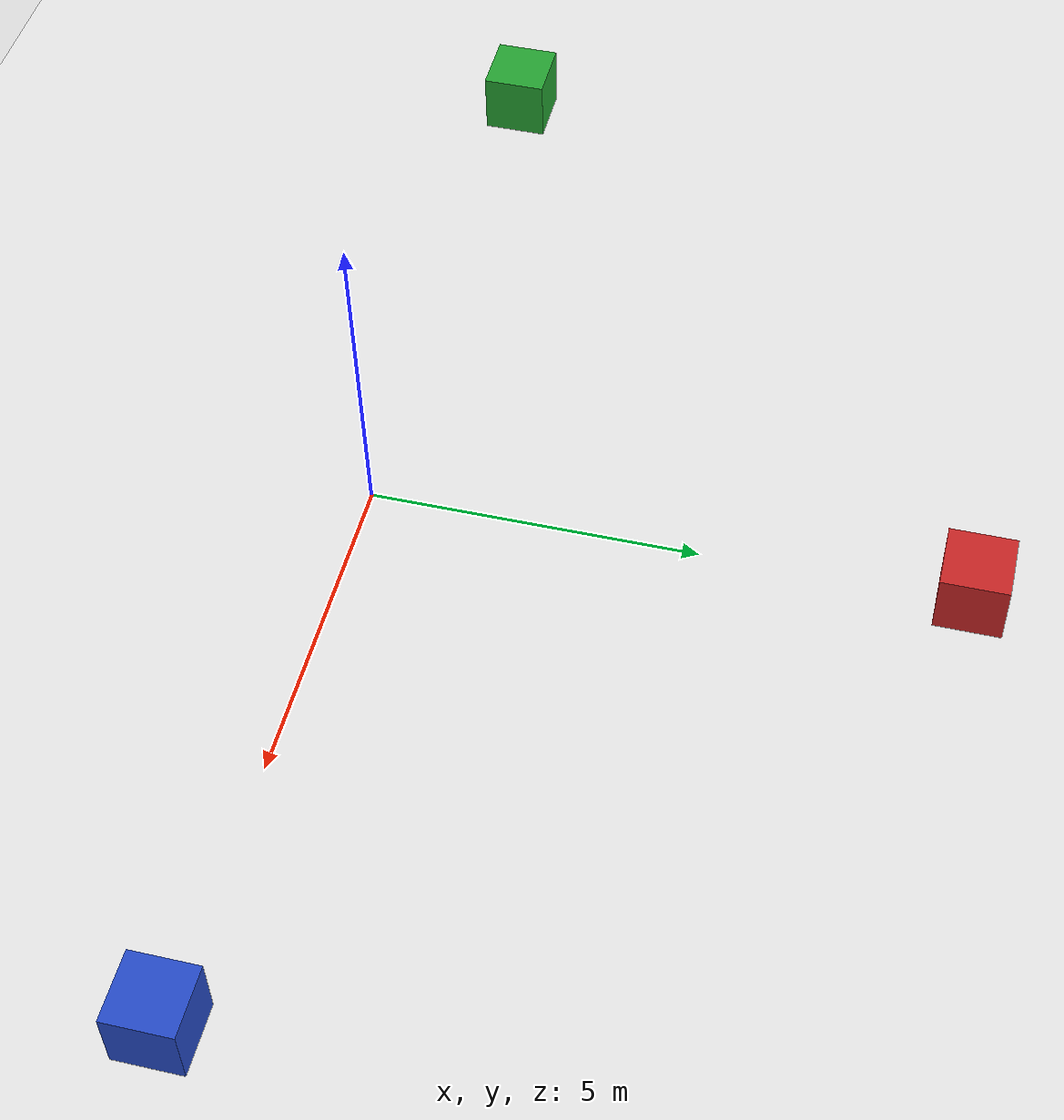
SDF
<sdf version='1.4'>
  <world name='default'>
    <scene>
      <ambient>0.4 0.4 0.4 1</ambient>
      <background>0.7 0.7 0.7 1</background>
      <shadows>1</shadows>
    </scene>
    <light name='sun' type='directional'>
      <cast_shadows>1</cast_shadows>
      <pose>0 0 10 0 -0 0</pose>
      <diffuse>0.8 0.8 0.8 1</diffuse>
      <specular>0.2 0.2 0.2 1</specular>
      <attenuation>
        <range>1000</range>
        <constant>0.9</constant>
        <linear>0.01</linear>
        <quadratic>0.001</quadratic>
      </attenuation>
      <direction>-0.5 0.1 -0.9</direction>
      <spot>
        <inner_angle>0</inner_angle>
        <outer_angle>0</outer_angle>
        <falloff>0</falloff>
      </spot>
    </light>
    <model name='ground_plane'>
      <static>1</static>
      <link name='link'>
        <collision name='collision'>
          <geometry>
            <plane>
              <normal>0 0 1</normal>
              <size>100 100</size>
            </plane>
          </geometry>
          <surface>
            <contact>
              <collide_bitmask>65535</collide_bitmask>
              <ode/>
            </contact>
            <friction>
              <ode>
                <mu>100</mu>
                <mu2>50</mu2>
              </ode>
              <torsional>
                <ode/>
              </torsional>
            </friction>
            <bounce/>
          </surface>
          <max_contacts>10</max_contacts>
        </collision>
        <visual name='visual'>
          <cast_shadows>0</cast_shadows>
          <geometry>
            <plane>
              <normal>0 0 1</normal>
              <size>100 100</size>
            </plane>
          </geometry>
          <material>
            <script>
              <uri>file://media/materials/scripts/gazebo.material</uri>
              <name>Gazebo/White</name>
            </script>
          </material>
        </visual>
        <self_collide>0</self_collide>
        <enable_wind>0</enable_wind>
        <kinematic>0</kinematic>
      </link>
    </model>
    <physics type='ode'>
      <real_time_update_rate>1000</real_time_update_rate>
      <max_step_size>0.001</max_step_size>
      <real_time_factor>1</real_time_factor>
      <ode>
        <solver>
          <type>quick</type>
          <iters>150</iters>
          <precon_iters>0</precon_iters>
          <sor>1.4</sor>
          <use_dynamic_moi_rescaling>1</use_dynamic_moi_rescaling>
        </solver>
        <constraints>
          <cfm>1e-05</cfm>
          <erp>0.2</erp>
          <contact_max_correcting_vel>2000</contact_max_correcting_vel>
          <contact_surface_layer>0.01</contact_surface_layer>
        </constraints>
      </ode>
    </physics>
    <gravity>0 0 -9.8</gravity>
    <magnetic_field>6e-06 2.3e-05 -4.2e-05</magnetic_field>
    <atmosphere type='adiabatic'/>
    <wind/>
    <spherical_coordinates>
      <surface_model>EARTH_WGS84</surface_model>
      <latitude_deg>0</latitude_deg>
      <longitude_deg>0</longitude_deg>
      <elevation>0</elevation>
      <heading_deg>0</heading_deg>
    </spherical_coordinates>

    <model name='unit_box'>
      <pose>9.00000 -0.00000 0.5 0 -0 0</pose>
      <link name='link'>
        <inertial>
          <mass>1</mass>
          <inertia>
            <ixx>0.166667</ixx>
            <ixy>0</ixy>
            <ixz>0</ixz>
            <iyy>0.166667</iyy>
            <iyz>0</iyz>
            <izz>0.166667</izz>
          </inertia>
          <pose>0 0 0 0 -0 0</pose>
        </inertial>
        <collision name='collision'>
          <geometry>
            <box>
              <size>1 1 1</size>
            </box>
          </geometry>
          <max_contacts>10</max_contacts>
          <surface>
            <contact>
              <ode/>
            </contact>
            <bounce/>
            <friction>
              <torsional>
                <ode/>
              </torsional>
              <ode/>
            </friction>
          </surface>
        </collision>
        <visual name='visual'>
          <geometry>
            <box>
              <size>1 1 1</size>
            </box>
          </geometry>
          <material>
            <script>
              <name>Gazebo/Blue</name>
              <uri>file://media/materials/scripts/gazebo.material</uri>
            </script>
          </material>
        </visual>
        <self_collide>0</self_collide>
        <enable_wind>0</enable_wind>
        <kinematic>0</kinematic>
      </link>
    </model>
    <model name='unit_box_0'>
      <pose>-9.00000 -0.00000 0.5 0 -0 0</pose>
      <link name='link'>
        <inertial>
          <mass>1</mass>
          <inertia>
            <ixx>0.166667</ixx>
            <ixy>0</ixy>
            <ixz>0</ixz>
            <iyy>0.166667</iyy>
            <iyz>0</iyz>
            <izz>0.166667</izz>
          </inertia>
          <pose>0 0 0 0 -0 0</pose>
        </inertial>
        <collision name='collision'>
          <geometry>
            <box>
              <size>1 1 1</size>
            </box>
          </geometry>
          <max_contacts>10</max_contacts>
          <surface>
            <contact>
              <ode/>
            </contact>
            <bounce/>
            <friction>
              <torsional>
                <ode/>
              </torsional>
              <ode/>
            </friction>
          </surface>
        </collision>
        <visual name='visual'>
          <geometry>
            <box>
              <size>1 1 1</size>
            </box>
          </geometry>
          <material>
            <script>
              <name>Gazebo/Green</name>
              <uri>file://media/materials/scripts/gazebo.material</uri>
            </script>
          </material>
        </visual>
        <self_collide>0</self_collide>
        <enable_wind>0</enable_wind>
        <kinematic>0</kinematic>
      </link>
    </model>
    <model name='unit_box_1'>
      <pose>-0.00000 9.00000 0.5 0 -0 0</pose>
      <link name='link'>
        <inertial>
          <mass>1</mass>
          <inertia>
            <ixx>0.166667</ixx>
            <ixy>0</ixy>
            <ixz>0</ixz>
            <iyy>0.166667</iyy>
            <iyz>0</iyz>
            <izz>0.166667</izz>
          </inertia>
          <pose>0 0 0 0 -0 0</pose>
        </inertial>
        <collision name='collision'>
          <geometry>
            <box>
              <size>1 1 1</size>
            </box>
          </geometry>
          <max_contacts>10</max_contacts>
          <surface>
            <contact>
              <ode/>
            </contact>
            <bounce/>
            <friction>
              <torsional>
                <ode/>
              </torsional>
              <ode/>
            </friction>
          </surface>
        </collision>
        <visual name='visual'>
          <geometry>
            <box>
              <size>1 1 1</size>
            </box>
          </geometry>
          <material>
            <script>
              <name>Gazebo/Red</name>
              <uri>file://media/materials/scripts/gazebo.material</uri>
            </script>
          </material>
        </visual>
        <self_collide>0</self_collide>
        <enable_wind>0</enable_wind>
        <kinematic>0</kinematic>
      </link>
    </model>

    <gui fullscreen='0'>
      <camera name='user_camera'>
        <pose>-0.692361 0.026472 17.6128 3.14159 1.57079 3.14159</pose>
        <view_controller>orbit</view_controller>
        <projection_type>perspective</projection_type>
      </camera>
    </gui>
  </world>
</sdf>
